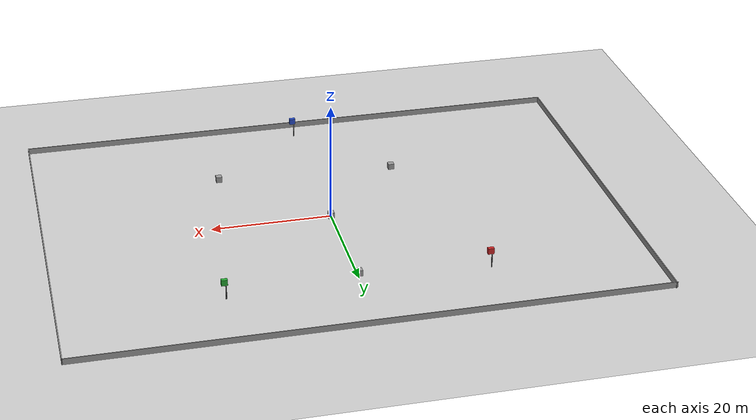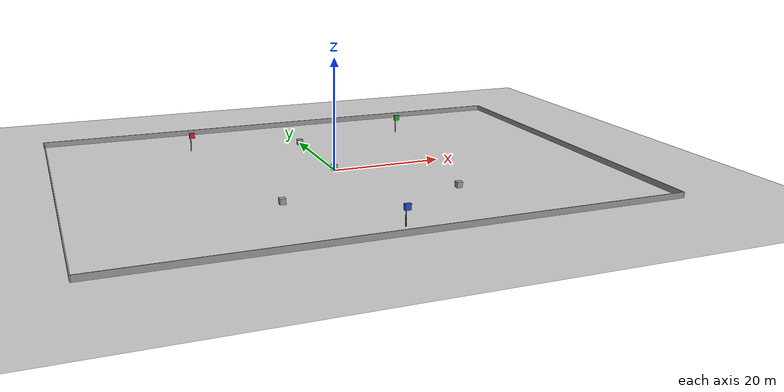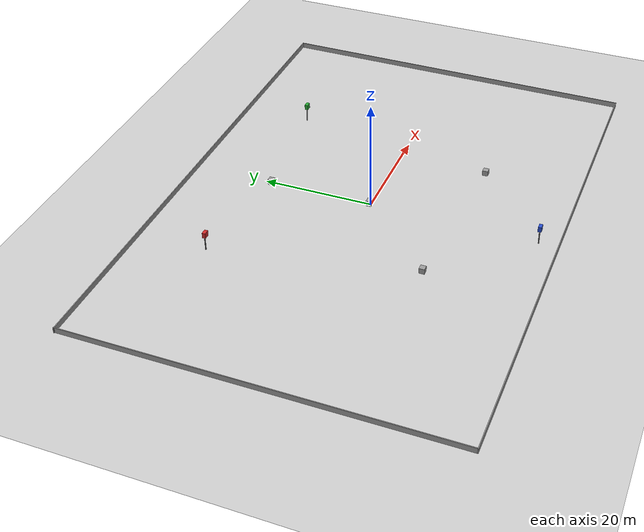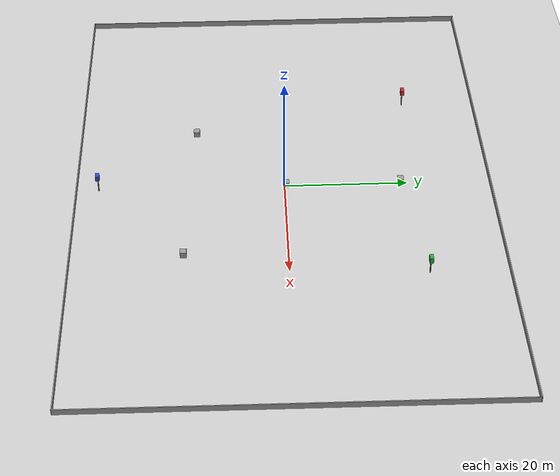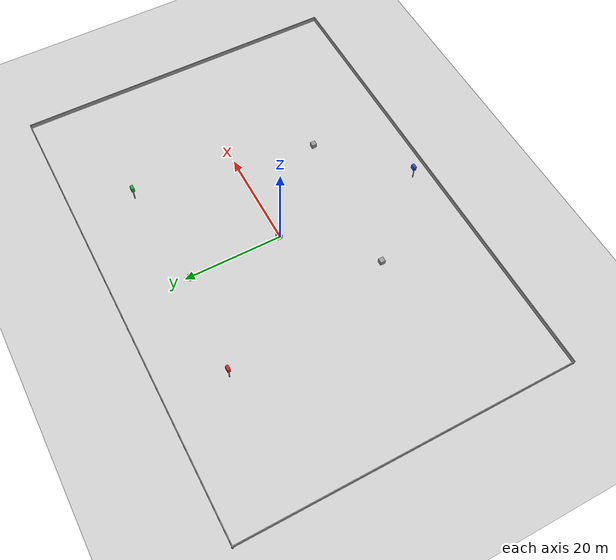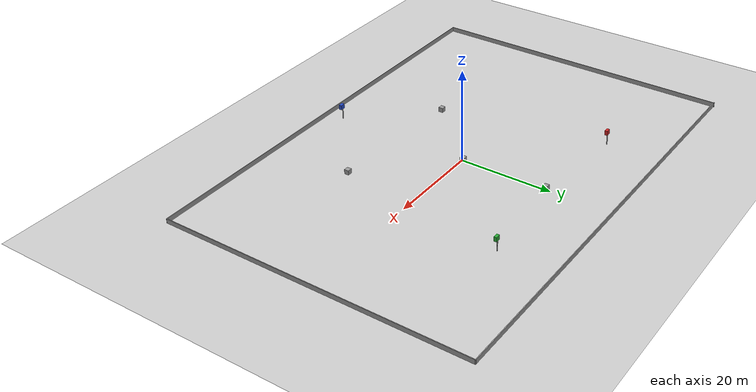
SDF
<sdf version="1.7">
 <world name="default">
  <model name="ground_plane">
   <static>1</static>
   <link name="link">
    <collision name="collision">
     <geometry><plane><normal>0 0 1</normal><size>100 100</size></plane></geometry>
     <surface>
      <contact><collide_bitmask>65535</collide_bitmask></contact>
      <friction><ode><mu>100</mu><mu2>50</mu2></ode></friction>
     </surface>
    </collision>
    <visual name="visual">
     <cast_shadows>0</cast_shadows>
     <geometry><plane><normal>0 0 1</normal><size>100 100</size></plane></geometry>
     <material>
      <script><uri>file://media/materials/scripts/gazebo.material</uri><name>Gazebo/Grey</name></script>
     </material>
    </visual>
   </link>
  </model>
  <light name="sun" type="directional">
   <pose>0 0 10 0 -0 0</pose>
   <diffuse>0.8 0.8 0.8 1</diffuse>
   <specular>0.2 0.2 0.2 1</specular>
   <attenuation>
    <range>1000</range>
    <constant>0.9</constant>
    <linear>0.01</linear>
    <quadratic>0.001</quadratic>
   </attenuation>
   <direction>-0.5 0.1 -0.9</direction>
   <spot><inner_angle>0</inner_angle><outer_angle>0</outer_angle><falloff>0</falloff></spot>
  </light>
  <model name="flag_1">
   <static>1</static>
   <link name="flag">
    <visual name="base">
     <pose>0 0 1.5 0 -0 0</pose>
     <geometry><cylinder><radius>0.1</radius><length>3</length></cylinder></geometry>
     <material><ambient>0 0 0 1</ambient></material>
    </visual>
    <visual name="top">
     <pose>0.25 0 3 0 -0 0</pose>
     <geometry><box><size>1 0.6 1</size></box></geometry>
     <material>
      <script><uri>file://media/materials/scripts/gazebo.material</uri><name>Gazebo/Red</name></script>
     </material>
    </visual>
   </link>
   <pose>-21.2132 21.2132 0 0 -0 0</pose>
  </model>
  <model name="flag_2">
   <static>1</static>
   <link name="flag">
    <visual name="base">
     <pose>0 0 1.5 0 -0 0</pose>
     <geometry><cylinder><radius>0.1</radius><length>3</length></cylinder></geometry>
     <material><ambient>0 0 0 1</ambient></material>
    </visual>
    <visual name="top">
     <pose>0.25 0 3 0 -0 0</pose>
     <geometry><box><size>1 0.6 1</size></box></geometry>
     <material>
      <script><uri>file://media/materials/scripts/gazebo.material</uri><name>Gazebo/Green</name></script>
     </material>
    </visual>
   </link>
   <pose>21.2132 21.2132 0 0 -0 0</pose>
  </model>
  <model name="flag_3">
   <static>1</static>
   <link name="flag">
    <visual name="base">
     <pose>0 0 1.5 0 -0 0</pose>
     <geometry><cylinder><radius>0.1</radius><length>3</length></cylinder></geometry>
     <material><ambient>0 0 0 1</ambient></material>
    </visual>
    <visual name="top">
     <pose>0.25 0 3 0 -0 0</pose>
     <geometry><box><size>1 0.6 1</size></box></geometry>
     <material>
      <script><uri>file://media/materials/scripts/gazebo.material</uri><name>Gazebo/Blue</name></script>
     </material>
    </visual>
   </link>
   <pose>0 -30 0 0 -0 0</pose>
  </model>
  <plugin name="dtfPlugin" filename="libdistance_to_flag_plugin.so"><nbFlags>3</nbFlags></plugin>
  <model name="limits">
   <link name="Wall_0">
    <collision name="Wall_0_Collision">
     <geometry><box><size>95 0.15 1</size></box></geometry>
     <pose>0 0 0.5 0 -0 0</pose>
    </collision>
    <visual name="Wall_0_Visual">
     <pose>0 0 0.5 0 -0 0</pose>
     <geometry><box><size>95 0.15 1</size></box></geometry>
     <material>
      <script><uri>file://media/materials/scripts/gazebo.material</uri><name>Gazebo/Grey</name></script>
      <ambient>1 1 1 1</ambient>
     </material>
     <meta><layer>0</layer></meta>
    </visual>
    <pose>-0.000204 33.4423 0 0 -0 0</pose>
   </link>
   <link name="Wall_1">
    <collision name="Wall_1_Collision">
     <geometry><box><size>67.1433 0.15 1</size></box></geometry>
     <pose>0 0 0.5 0 -0 0</pose>
    </collision>
    <visual name="Wall_1_Visual">
     <pose>0 0 0.5 0 -0 0</pose>
     <geometry><box><size>67.1433 0.15 1</size></box></geometry>
     <material>
      <script><uri>file://media/materials/scripts/gazebo.material</uri><name>Gazebo/Grey</name></script>
      <ambient>1 1 1 1</ambient>
     </material>
     <meta><layer>0</layer></meta>
    </visual>
    <pose>47.2433 -0.053719 0 0 -0 -1.57621</pose>
   </link>
   <link name="Wall_2">
    <collision name="Wall_2_Collision">
     <geometry><box><size>94.5 0.15 1</size></box></geometry>
     <pose>0 0 0.5 0 -0 0</pose>
    </collision>
    <visual name="Wall_2_Visual">
     <pose>0 0 0.5 0 -0 0</pose>
     <geometry><box><size>94.5 0.15 1</size></box></geometry>
     <material>
      <script><uri>file://media/materials/scripts/gazebo.material</uri><name>Gazebo/Grey</name></script>
      <ambient>1 1 1 1</ambient>
     </material>
     <meta><layer>0</layer></meta>
    </visual>
    <pose>-0.113204 -33.5497 0 0 -0 3.14159</pose>
   </link>
   <link name="Wall_3">
    <collision name="Wall_3_Collision">
     <geometry><box><size>67.25 0.15 1</size></box></geometry>
     <pose>0 0 0.5 0 -0 0</pose>
    </collision>
    <visual name="Wall_3_Visual">
     <pose>0 0 0.5 0 -0 0</pose>
     <geometry><box><size>67.25 0.15 1</size></box></geometry>
     <material>
      <script><uri>file://media/materials/scripts/gazebo.material</uri><name>Gazebo/Grey</name></script>
      <ambient>1 1 1 1</ambient>
     </material>
     <meta><layer>0</layer></meta>
    </visual>
    <pose>-47.2882 0.000281 0 0 -0 1.5708</pose>
   </link>
   <static>1</static>
  </model>
  <gravity>0 0 -9.8</gravity>
  <magnetic_field>6e-06 2.3e-05 -4.2e-05</magnetic_field>
  <atmosphere type="adiabatic"/>
  <physics type="ode">
   <max_step_size>0.001</max_step_size>
   <real_time_factor>1</real_time_factor>
   <real_time_update_rate>1000</real_time_update_rate>
  </physics>
  <scene><ambient>0.4 0.4 0.4 1</ambient><background>0.7 0.7 0.7 1</background><shadows>1</shadows></scene>
  <spherical_coordinates>
   <surface_model>EARTH_WGS84</surface_model>
   <latitude_deg>0</latitude_deg>
   <longitude_deg>0</longitude_deg>
   <elevation>0</elevation>
   <heading_deg>0</heading_deg>
  </spherical_coordinates>
  <model name="unit_box">
   <pose>-0.004237 0.251894 0.499995 -1e-05 -0 -0</pose>
   <link name="link">
    <inertial>
     <mass>1</mass>
     <inertia>
      <ixx>0.166667</ixx>
      <ixy>0</ixy>
      <ixz>0</ixz>
      <iyy>0.166667</iyy>
      <iyz>0</iyz>
      <izz>0.166667</izz>
     </inertia>
    </inertial>
    <collision name="collision"><geometry><box><size>1 1 1</size></box></geometry></collision>
    <visual name="visual">
     <geometry><box><size>1 1 1</size></box></geometry>
     <material>
      <script><name>Gazebo/Grey</name><uri>file://media/materials/scripts/gazebo.material</uri></script>
     </material>
    </visual>
   </link>
  </model>
  <model name="unit_box_0">
   <pose>16.0276 -16.135 0.499995 0 1e-05 0</pose>
   <link name="link">
    <inertial>
     <mass>1</mass>
     <inertia>
      <ixx>0.166667</ixx>
      <ixy>0</ixy>
      <ixz>0</ixz>
      <iyy>0.166667</iyy>
      <iyz>0</iyz>
      <izz>0.166667</izz>
     </inertia>
    </inertial>
    <collision name="collision"><geometry><box><size>1 1 1</size></box></geometry></collision>
    <visual name="visual">
     <geometry><box><size>1 1 1</size></box></geometry>
     <material>
      <script><name>Gazebo/Grey</name><uri>file://media/materials/scripts/gazebo.material</uri></script>
     </material>
    </visual>
   </link>
  </model>
  <model name="unit_box_1">
   <pose>-0.260282 18.8946 0.499995 -1e-05 -0 0</pose>
   <link name="link">
    <inertial>
     <mass>1</mass>
     <inertia>
      <ixx>0.166667</ixx>
      <ixy>0</ixy>
      <ixz>0</ixz>
      <iyy>0.166667</iyy>
      <iyz>0</iyz>
      <izz>0.166667</izz>
     </inertia>
    </inertial>
    <collision name="collision"><geometry><box><size>1 1 1</size></box></geometry></collision>
    <visual name="visual">
     <geometry><box><size>1 1 1</size></box></geometry>
     <material>
      <script><name>Gazebo/Grey</name><uri>file://media/materials/scripts/gazebo.material</uri></script>
     </material>
    </visual>
   </link>
  </model>
  <model name="unit_box_2">
   <pose>-13.9373 -14.261 0.5 0 -0 0</pose>
   <link name="link">
    <inertial>
     <mass>1</mass>
     <inertia>
      <ixx>0.166667</ixx>
      <ixy>0</ixy>
      <ixz>0</ixz>
      <iyy>0.166667</iyy>
      <iyz>0</iyz>
      <izz>0.166667</izz>
     </inertia>
    </inertial>
    <collision name="collision"><geometry><box><size>1 1 1</size></box></geometry></collision>
    <visual name="visual">
     <geometry><box><size>1 1 1</size></box></geometry>
     <material>
      <script><name>Gazebo/Grey</name><uri>file://media/materials/scripts/gazebo.material</uri></script>
     </material>
    </visual>
   </link>
  </model>
 </world>
</sdf>
